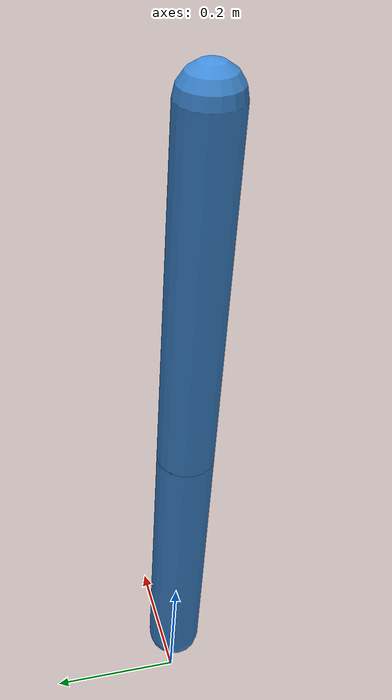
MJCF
<mujoco model="two_link_arm">
  <compiler angle="radian"/>
  <option timestep="0.001" gravity="0 0 -9.81" integrator="implicitfast"/>
  <default>
    <joint axis="0 1 0" damping="0.2" limited="true" range="-3.14 3.14"/>
    <geom type="capsule" size="0.04" rgba="0.25 0.55 0.85 1"/>
    <motor ctrllimited="true" ctrlrange="-100 100"/>
  </default>
  <worldbody>
    <body name="upper" pos="0 0 1">
      <joint name="shoulder"/>
      <geom fromto="0 0 0 0 0 -0.5" mass="1.0"/>
      <body name="forearm" pos="0 0 -0.5">
        <joint name="elbow"/>
        <geom fromto="0 0 0 0 0 -0.4" mass="0.7"/>
        <site name="tool" pos="0 0 -0.4" size="0.025" rgba="1 0.2 0.1 1"/>
      </body>
    </body>
  </worldbody>
  <actuator>
    <motor name="shoulder_motor" joint="shoulder" gear="1"/>
    <motor name="elbow_motor" joint="elbow" gear="1"/>
  </actuator>
</mujoco>
